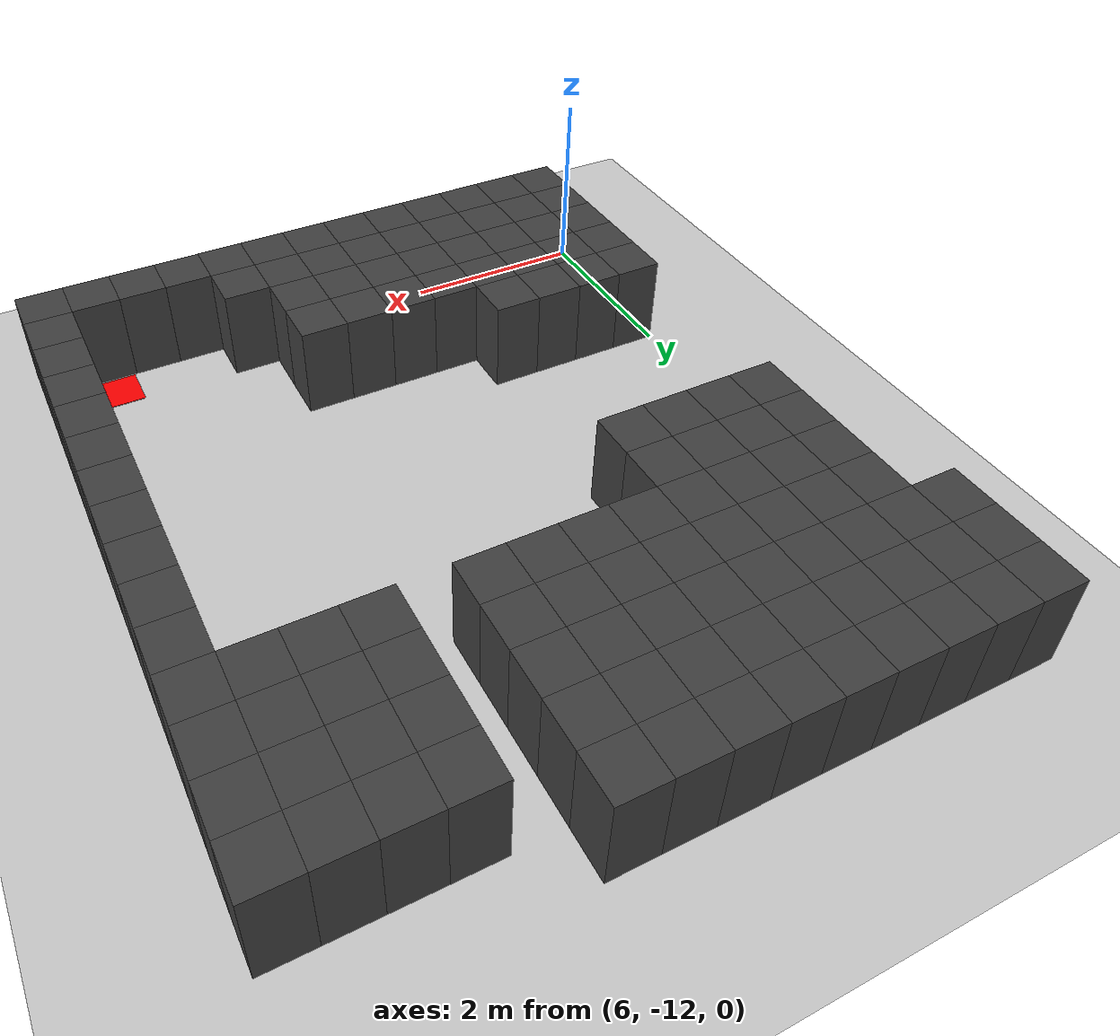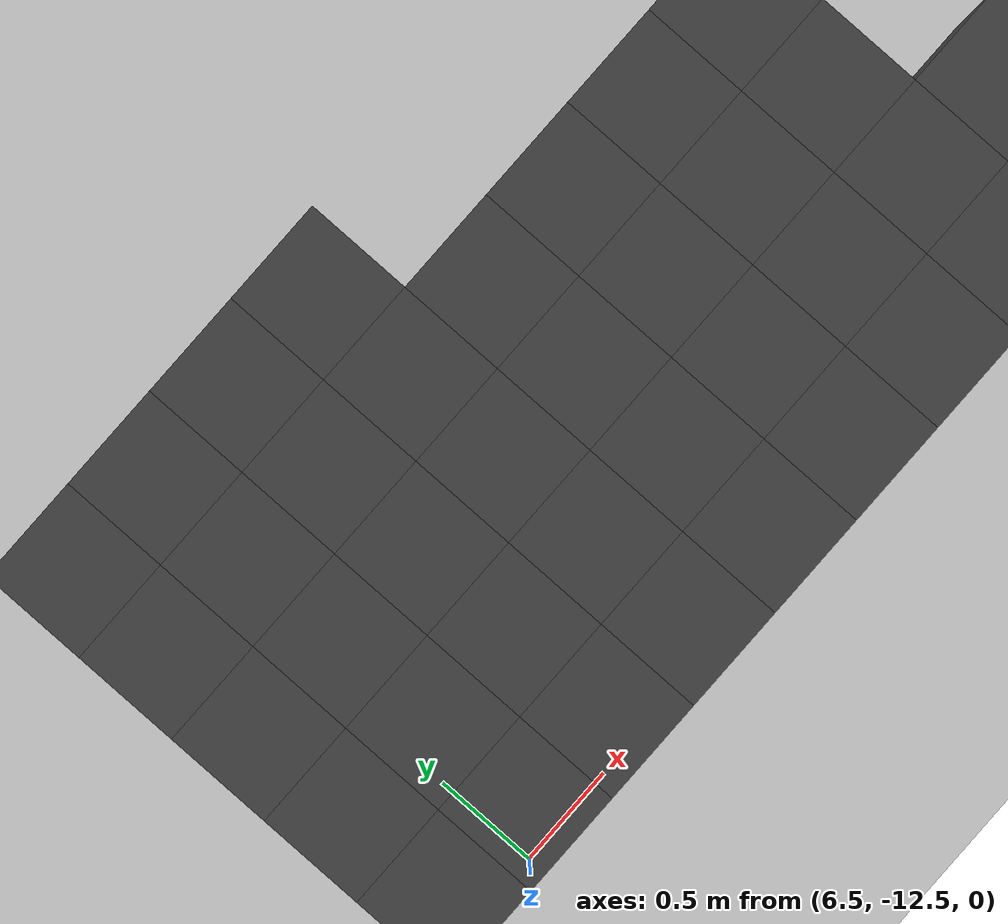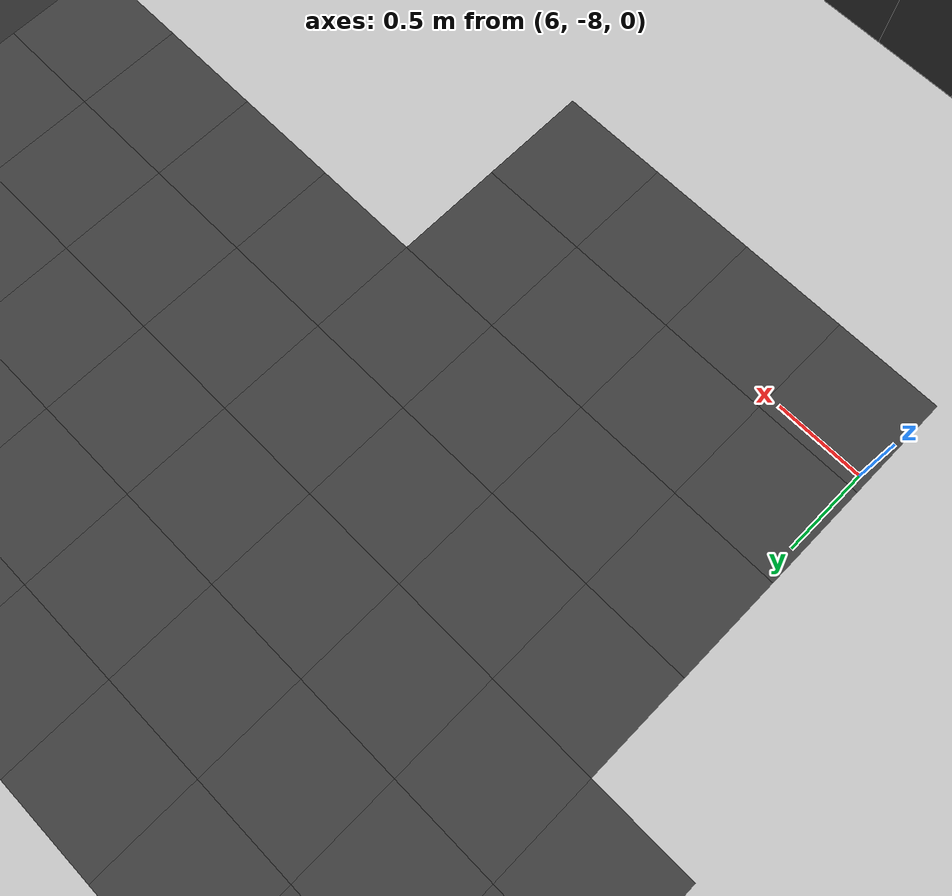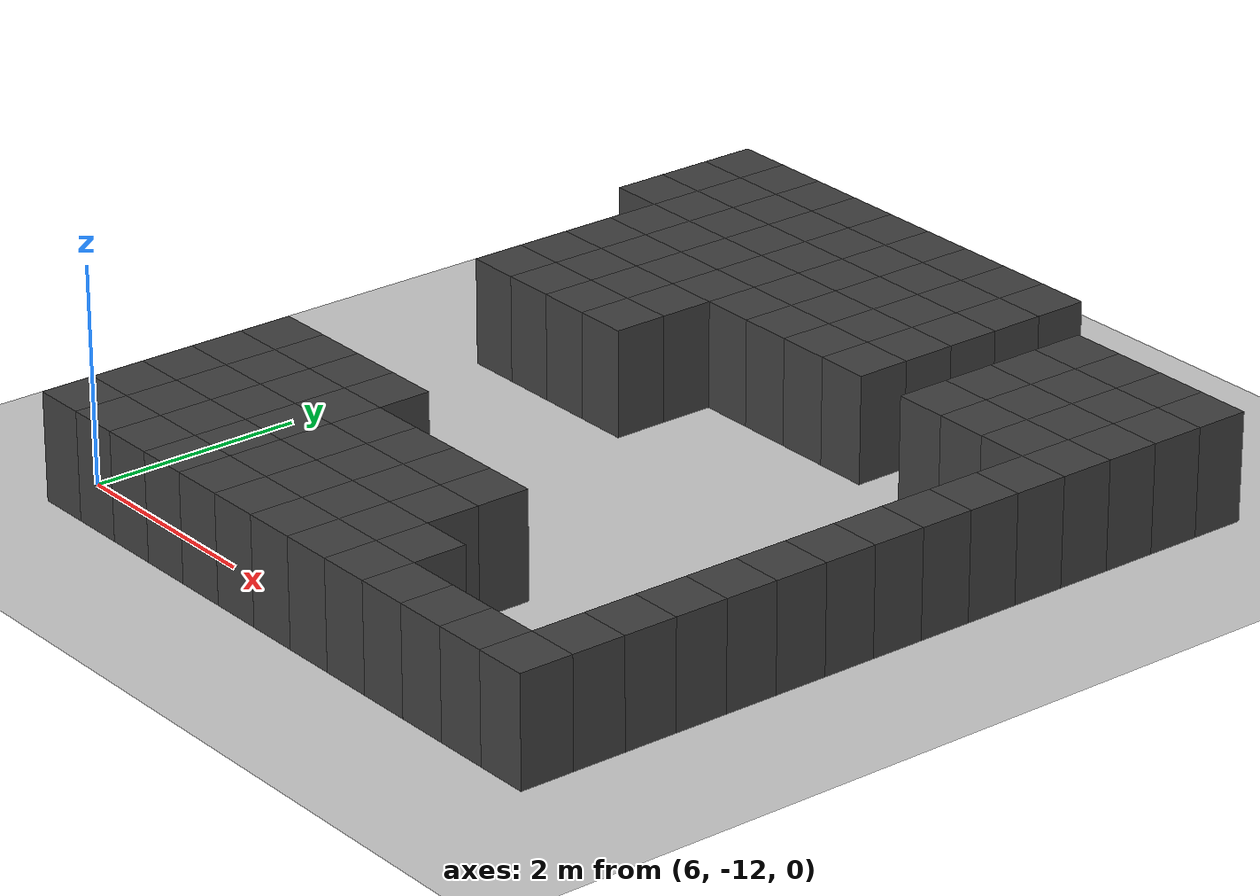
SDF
<sdf version="1.7">
 <world name="map_12885">
  <model name="ground_plane">
   <static>true</static>
   <link name="link">
    <collision name="collision">
     <geometry><plane><normal>0 0 1</normal><size>200 200</size></plane></geometry>
    </collision>
    <visual name="visual">
     <geometry><plane><normal>0 0 1</normal><size>200 200</size></plane></geometry>
     <material><ambient>0.8 0.8 0.8 1</ambient><diffuse>0.8 0.8 0.8 1</diffuse></material>
    </visual>
   </link>
  </model>
  <model name="maze_environment">
   <static>true</static>
   <link name="wall_1413">
    <pose>5.750 -4.750 0.500 0 0 0</pose>
    <collision name="col"><geometry><box><size>0.5 0.5 1.0</size></box></geometry></collision>
    <visual name="vis">
     <geometry><box><size>0.5 0.5 1.0</size></box></geometry>
     <material><ambient>0.15 0.15 0.15 1</ambient><diffuse>0.25 0.25 0.25 1</diffuse></material>
    </visual>
   </link>
   <link name="wall_1414">
    <pose>6.250 -4.750 0.500 0 0 0</pose>
    <collision name="col"><geometry><box><size>0.5 0.5 1.0</size></box></geometry></collision>
    <visual name="vis">
     <geometry><box><size>0.5 0.5 1.0</size></box></geometry>
     <material><ambient>0.15 0.15 0.15 1</ambient><diffuse>0.25 0.25 0.25 1</diffuse></material>
    </visual>
   </link>
   <link name="wall_1415">
    <pose>6.750 -4.750 0.500 0 0 0</pose>
    <collision name="col"><geometry><box><size>0.5 0.5 1.0</size></box></geometry></collision>
    <visual name="vis">
     <geometry><box><size>0.5 0.5 1.0</size></box></geometry>
     <material><ambient>0.15 0.15 0.15 1</ambient><diffuse>0.25 0.25 0.25 1</diffuse></material>
    </visual>
   </link>
   <link name="wall_1416">
    <pose>7.250 -4.750 0.500 0 0 0</pose>
    <collision name="col"><geometry><box><size>0.5 0.5 1.0</size></box></geometry></collision>
    <visual name="vis">
     <geometry><box><size>0.5 0.5 1.0</size></box></geometry>
     <material><ambient>0.15 0.15 0.15 1</ambient><diffuse>0.25 0.25 0.25 1</diffuse></material>
    </visual>
   </link>
   <link name="wall_1417">
    <pose>7.750 -4.750 0.500 0 0 0</pose>
    <collision name="col"><geometry><box><size>0.5 0.5 1.0</size></box></geometry></collision>
    <visual name="vis">
     <geometry><box><size>0.5 0.5 1.0</size></box></geometry>
     <material><ambient>0.15 0.15 0.15 1</ambient><diffuse>0.25 0.25 0.25 1</diffuse></material>
    </visual>
   </link>
   <link name="wall_1418">
    <pose>8.250 -4.750 0.500 0 0 0</pose>
    <collision name="col"><geometry><box><size>0.5 0.5 1.0</size></box></geometry></collision>
    <visual name="vis">
     <geometry><box><size>0.5 0.5 1.0</size></box></geometry>
     <material><ambient>0.15 0.15 0.15 1</ambient><diffuse>0.25 0.25 0.25 1</diffuse></material>
    </visual>
   </link>
   <link name="wall_1419">
    <pose>8.750 -4.750 0.500 0 0 0</pose>
    <collision name="col"><geometry><box><size>0.5 0.5 1.0</size></box></geometry></collision>
    <visual name="vis">
     <geometry><box><size>0.5 0.5 1.0</size></box></geometry>
     <material><ambient>0.15 0.15 0.15 1</ambient><diffuse>0.25 0.25 0.25 1</diffuse></material>
    </visual>
   </link>
   <link name="wall_1420">
    <pose>9.250 -4.750 0.500 0 0 0</pose>
    <collision name="col"><geometry><box><size>0.5 0.5 1.0</size></box></geometry></collision>
    <visual name="vis">
     <geometry><box><size>0.5 0.5 1.0</size></box></geometry>
     <material><ambient>0.15 0.15 0.15 1</ambient><diffuse>0.25 0.25 0.25 1</diffuse></material>
    </visual>
   </link>
   <link name="wall_1421">
    <pose>9.750 -4.750 0.500 0 0 0</pose>
    <collision name="col"><geometry><box><size>0.5 0.5 1.0</size></box></geometry></collision>
    <visual name="vis">
     <geometry><box><size>0.5 0.5 1.0</size></box></geometry>
     <material><ambient>0.15 0.15 0.15 1</ambient><diffuse>0.25 0.25 0.25 1</diffuse></material>
    </visual>
   </link>
   <link name="wall_1441">
    <pose>5.750 -5.250 0.500 0 0 0</pose>
    <collision name="col"><geometry><box><size>0.5 0.5 1.0</size></box></geometry></collision>
    <visual name="vis">
     <geometry><box><size>0.5 0.5 1.0</size></box></geometry>
     <material><ambient>0.15 0.15 0.15 1</ambient><diffuse>0.25 0.25 0.25 1</diffuse></material>
    </visual>
   </link>
   <link name="wall_1442">
    <pose>6.250 -5.250 0.500 0 0 0</pose>
    <collision name="col"><geometry><box><size>0.5 0.5 1.0</size></box></geometry></collision>
    <visual name="vis">
     <geometry><box><size>0.5 0.5 1.0</size></box></geometry>
     <material><ambient>0.15 0.15 0.15 1</ambient><diffuse>0.25 0.25 0.25 1</diffuse></material>
    </visual>
   </link>
   <link name="wall_1443">
    <pose>6.750 -5.250 0.500 0 0 0</pose>
    <collision name="col"><geometry><box><size>0.5 0.5 1.0</size></box></geometry></collision>
    <visual name="vis">
     <geometry><box><size>0.5 0.5 1.0</size></box></geometry>
     <material><ambient>0.15 0.15 0.15 1</ambient><diffuse>0.25 0.25 0.25 1</diffuse></material>
    </visual>
   </link>
   <link name="wall_1444">
    <pose>7.250 -5.250 0.500 0 0 0</pose>
    <collision name="col"><geometry><box><size>0.5 0.5 1.0</size></box></geometry></collision>
    <visual name="vis">
     <geometry><box><size>0.5 0.5 1.0</size></box></geometry>
     <material><ambient>0.15 0.15 0.15 1</ambient><diffuse>0.25 0.25 0.25 1</diffuse></material>
    </visual>
   </link>
   <link name="wall_1445">
    <pose>7.750 -5.250 0.500 0 0 0</pose>
    <collision name="col"><geometry><box><size>0.5 0.5 1.0</size></box></geometry></collision>
    <visual name="vis">
     <geometry><box><size>0.5 0.5 1.0</size></box></geometry>
     <material><ambient>0.15 0.15 0.15 1</ambient><diffuse>0.25 0.25 0.25 1</diffuse></material>
    </visual>
   </link>
   <link name="wall_1446">
    <pose>8.250 -5.250 0.500 0 0 0</pose>
    <collision name="col"><geometry><box><size>0.5 0.5 1.0</size></box></geometry></collision>
    <visual name="vis">
     <geometry><box><size>0.5 0.5 1.0</size></box></geometry>
     <material><ambient>0.15 0.15 0.15 1</ambient><diffuse>0.25 0.25 0.25 1</diffuse></material>
    </visual>
   </link>
   <link name="wall_1447">
    <pose>8.750 -5.250 0.500 0 0 0</pose>
    <collision name="col"><geometry><box><size>0.5 0.5 1.0</size></box></geometry></collision>
    <visual name="vis">
     <geometry><box><size>0.5 0.5 1.0</size></box></geometry>
     <material><ambient>0.15 0.15 0.15 1</ambient><diffuse>0.25 0.25 0.25 1</diffuse></material>
    </visual>
   </link>
   <link name="wall_1448">
    <pose>9.250 -5.250 0.500 0 0 0</pose>
    <collision name="col"><geometry><box><size>0.5 0.5 1.0</size></box></geometry></collision>
    <visual name="vis">
     <geometry><box><size>0.5 0.5 1.0</size></box></geometry>
     <material><ambient>0.15 0.15 0.15 1</ambient><diffuse>0.25 0.25 0.25 1</diffuse></material>
    </visual>
   </link>
   <link name="wall_1449">
    <pose>9.750 -5.250 0.500 0 0 0</pose>
    <collision name="col"><geometry><box><size>0.5 0.5 1.0</size></box></geometry></collision>
    <visual name="vis">
     <geometry><box><size>0.5 0.5 1.0</size></box></geometry>
     <material><ambient>0.15 0.15 0.15 1</ambient><diffuse>0.25 0.25 0.25 1</diffuse></material>
    </visual>
   </link>
   <link name="wall_1450">
    <pose>10.750 -5.250 0.500 0 0 0</pose>
    <collision name="col"><geometry><box><size>0.5 0.5 1.0</size></box></geometry></collision>
    <visual name="vis">
     <geometry><box><size>0.5 0.5 1.0</size></box></geometry>
     <material><ambient>0.15 0.15 0.15 1</ambient><diffuse>0.25 0.25 0.25 1</diffuse></material>
    </visual>
   </link>
   <link name="wall_1451">
    <pose>11.250 -5.250 0.500 0 0 0</pose>
    <collision name="col"><geometry><box><size>0.5 0.5 1.0</size></box></geometry></collision>
    <visual name="vis">
     <geometry><box><size>0.5 0.5 1.0</size></box></geometry>
     <material><ambient>0.15 0.15 0.15 1</ambient><diffuse>0.25 0.25 0.25 1</diffuse></material>
    </visual>
   </link>
   <link name="wall_1452">
    <pose>11.750 -5.250 0.500 0 0 0</pose>
    <collision name="col"><geometry><box><size>0.5 0.5 1.0</size></box></geometry></collision>
    <visual name="vis">
     <geometry><box><size>0.5 0.5 1.0</size></box></geometry>
     <material><ambient>0.15 0.15 0.15 1</ambient><diffuse>0.25 0.25 0.25 1</diffuse></material>
    </visual>
   </link>
   <link name="wall_1453">
    <pose>12.250 -5.250 0.500 0 0 0</pose>
    <collision name="col"><geometry><box><size>0.5 0.5 1.0</size></box></geometry></collision>
    <visual name="vis">
     <geometry><box><size>0.5 0.5 1.0</size></box></geometry>
     <material><ambient>0.15 0.15 0.15 1</ambient><diffuse>0.25 0.25 0.25 1</diffuse></material>
    </visual>
   </link>
   <link name="wall_1468">
    <pose>5.750 -5.750 0.500 0 0 0</pose>
    <collision name="col"><geometry><box><size>0.5 0.5 1.0</size></box></geometry></collision>
    <visual name="vis">
     <geometry><box><size>0.5 0.5 1.0</size></box></geometry>
     <material><ambient>0.15 0.15 0.15 1</ambient><diffuse>0.25 0.25 0.25 1</diffuse></material>
    </visual>
   </link>
   <link name="wall_1469">
    <pose>6.250 -5.750 0.500 0 0 0</pose>
    <collision name="col"><geometry><box><size>0.5 0.5 1.0</size></box></geometry></collision>
    <visual name="vis">
     <geometry><box><size>0.5 0.5 1.0</size></box></geometry>
     <material><ambient>0.15 0.15 0.15 1</ambient><diffuse>0.25 0.25 0.25 1</diffuse></material>
    </visual>
   </link>
   <link name="wall_1470">
    <pose>6.750 -5.750 0.500 0 0 0</pose>
    <collision name="col"><geometry><box><size>0.5 0.5 1.0</size></box></geometry></collision>
    <visual name="vis">
     <geometry><box><size>0.5 0.5 1.0</size></box></geometry>
     <material><ambient>0.15 0.15 0.15 1</ambient><diffuse>0.25 0.25 0.25 1</diffuse></material>
    </visual>
   </link>
   <link name="wall_1471">
    <pose>7.250 -5.750 0.500 0 0 0</pose>
    <collision name="col"><geometry><box><size>0.5 0.5 1.0</size></box></geometry></collision>
    <visual name="vis">
     <geometry><box><size>0.5 0.5 1.0</size></box></geometry>
     <material><ambient>0.15 0.15 0.15 1</ambient><diffuse>0.25 0.25 0.25 1</diffuse></material>
    </visual>
   </link>
   <link name="wall_1472">
    <pose>7.750 -5.750 0.500 0 0 0</pose>
    <collision name="col"><geometry><box><size>0.5 0.5 1.0</size></box></geometry></collision>
    <visual name="vis">
     <geometry><box><size>0.5 0.5 1.0</size></box></geometry>
     <material><ambient>0.15 0.15 0.15 1</ambient><diffuse>0.25 0.25 0.25 1</diffuse></material>
    </visual>
   </link>
   <link name="wall_1473">
    <pose>8.250 -5.750 0.500 0 0 0</pose>
    <collision name="col"><geometry><box><size>0.5 0.5 1.0</size></box></geometry></collision>
    <visual name="vis">
     <geometry><box><size>0.5 0.5 1.0</size></box></geometry>
     <material><ambient>0.15 0.15 0.15 1</ambient><diffuse>0.25 0.25 0.25 1</diffuse></material>
    </visual>
   </link>
   <link name="wall_1474">
    <pose>8.750 -5.750 0.500 0 0 0</pose>
    <collision name="col"><geometry><box><size>0.5 0.5 1.0</size></box></geometry></collision>
    <visual name="vis">
     <geometry><box><size>0.5 0.5 1.0</size></box></geometry>
     <material><ambient>0.15 0.15 0.15 1</ambient><diffuse>0.25 0.25 0.25 1</diffuse></material>
    </visual>
   </link>
   <link name="wall_1475">
    <pose>9.250 -5.750 0.500 0 0 0</pose>
    <collision name="col"><geometry><box><size>0.5 0.5 1.0</size></box></geometry></collision>
    <visual name="vis">
     <geometry><box><size>0.5 0.5 1.0</size></box></geometry>
     <material><ambient>0.15 0.15 0.15 1</ambient><diffuse>0.25 0.25 0.25 1</diffuse></material>
    </visual>
   </link>
   <link name="wall_1476">
    <pose>9.750 -5.750 0.500 0 0 0</pose>
    <collision name="col"><geometry><box><size>0.5 0.5 1.0</size></box></geometry></collision>
    <visual name="vis">
     <geometry><box><size>0.5 0.5 1.0</size></box></geometry>
     <material><ambient>0.15 0.15 0.15 1</ambient><diffuse>0.25 0.25 0.25 1</diffuse></material>
    </visual>
   </link>
   <link name="wall_1477">
    <pose>10.750 -5.750 0.500 0 0 0</pose>
    <collision name="col"><geometry><box><size>0.5 0.5 1.0</size></box></geometry></collision>
    <visual name="vis">
     <geometry><box><size>0.5 0.5 1.0</size></box></geometry>
     <material><ambient>0.15 0.15 0.15 1</ambient><diffuse>0.25 0.25 0.25 1</diffuse></material>
    </visual>
   </link>
   <link name="wall_1478">
    <pose>11.250 -5.750 0.500 0 0 0</pose>
    <collision name="col"><geometry><box><size>0.5 0.5 1.0</size></box></geometry></collision>
    <visual name="vis">
     <geometry><box><size>0.5 0.5 1.0</size></box></geometry>
     <material><ambient>0.15 0.15 0.15 1</ambient><diffuse>0.25 0.25 0.25 1</diffuse></material>
    </visual>
   </link>
   <link name="wall_1479">
    <pose>11.750 -5.750 0.500 0 0 0</pose>
    <collision name="col"><geometry><box><size>0.5 0.5 1.0</size></box></geometry></collision>
    <visual name="vis">
     <geometry><box><size>0.5 0.5 1.0</size></box></geometry>
     <material><ambient>0.15 0.15 0.15 1</ambient><diffuse>0.25 0.25 0.25 1</diffuse></material>
    </visual>
   </link>
   <link name="wall_1480">
    <pose>12.250 -5.750 0.500 0 0 0</pose>
    <collision name="col"><geometry><box><size>0.5 0.5 1.0</size></box></geometry></collision>
    <visual name="vis">
     <geometry><box><size>0.5 0.5 1.0</size></box></geometry>
     <material><ambient>0.15 0.15 0.15 1</ambient><diffuse>0.25 0.25 0.25 1</diffuse></material>
    </visual>
   </link>
   <link name="wall_1502">
    <pose>6.250 -6.250 0.500 0 0 0</pose>
    <collision name="col"><geometry><box><size>0.5 0.5 1.0</size></box></geometry></collision>
    <visual name="vis">
     <geometry><box><size>0.5 0.5 1.0</size></box></geometry>
     <material><ambient>0.15 0.15 0.15 1</ambient><diffuse>0.25 0.25 0.25 1</diffuse></material>
    </visual>
   </link>
   <link name="wall_1503">
    <pose>6.750 -6.250 0.500 0 0 0</pose>
    <collision name="col"><geometry><box><size>0.5 0.5 1.0</size></box></geometry></collision>
    <visual name="vis">
     <geometry><box><size>0.5 0.5 1.0</size></box></geometry>
     <material><ambient>0.15 0.15 0.15 1</ambient><diffuse>0.25 0.25 0.25 1</diffuse></material>
    </visual>
   </link>
   <link name="wall_1504">
    <pose>7.250 -6.250 0.500 0 0 0</pose>
    <collision name="col"><geometry><box><size>0.5 0.5 1.0</size></box></geometry></collision>
    <visual name="vis">
     <geometry><box><size>0.5 0.5 1.0</size></box></geometry>
     <material><ambient>0.15 0.15 0.15 1</ambient><diffuse>0.25 0.25 0.25 1</diffuse></material>
    </visual>
   </link>
   <link name="wall_1505">
    <pose>7.750 -6.250 0.500 0 0 0</pose>
    <collision name="col"><geometry><box><size>0.5 0.5 1.0</size></box></geometry></collision>
    <visual name="vis">
     <geometry><box><size>0.5 0.5 1.0</size></box></geometry>
     <material><ambient>0.15 0.15 0.15 1</ambient><diffuse>0.25 0.25 0.25 1</diffuse></material>
    </visual>
   </link>
   <link name="wall_1506">
    <pose>8.250 -6.250 0.500 0 0 0</pose>
    <collision name="col"><geometry><box><size>0.5 0.5 1.0</size></box></geometry></collision>
    <visual name="vis">
     <geometry><box><size>0.5 0.5 1.0</size></box></geometry>
     <material><ambient>0.15 0.15 0.15 1</ambient><diffuse>0.25 0.25 0.25 1</diffuse></material>
    </visual>
   </link>
   <link name="wall_1507">
    <pose>8.750 -6.250 0.500 0 0 0</pose>
    <collision name="col"><geometry><box><size>0.5 0.5 1.0</size></box></geometry></collision>
    <visual name="vis">
     <geometry><box><size>0.5 0.5 1.0</size></box></geometry>
     <material><ambient>0.15 0.15 0.15 1</ambient><diffuse>0.25 0.25 0.25 1</diffuse></material>
    </visual>
   </link>
   <link name="wall_1508">
    <pose>9.250 -6.250 0.500 0 0 0</pose>
    <collision name="col"><geometry><box><size>0.5 0.5 1.0</size></box></geometry></collision>
    <visual name="vis">
     <geometry><box><size>0.5 0.5 1.0</size></box></geometry>
     <material><ambient>0.15 0.15 0.15 1</ambient><diffuse>0.25 0.25 0.25 1</diffuse></material>
    </visual>
   </link>
   <link name="wall_1509">
    <pose>9.750 -6.250 0.500 0 0 0</pose>
    <collision name="col"><geometry><box><size>0.5 0.5 1.0</size></box></geometry></collision>
    <visual name="vis">
     <geometry><box><size>0.5 0.5 1.0</size></box></geometry>
     <material><ambient>0.15 0.15 0.15 1</ambient><diffuse>0.25 0.25 0.25 1</diffuse></material>
    </visual>
   </link>
   <link name="wall_1510">
    <pose>10.750 -6.250 0.500 0 0 0</pose>
    <collision name="col"><geometry><box><size>0.5 0.5 1.0</size></box></geometry></collision>
    <visual name="vis">
     <geometry><box><size>0.5 0.5 1.0</size></box></geometry>
     <material><ambient>0.15 0.15 0.15 1</ambient><diffuse>0.25 0.25 0.25 1</diffuse></material>
    </visual>
   </link>
   <link name="wall_1511">
    <pose>11.250 -6.250 0.500 0 0 0</pose>
    <collision name="col"><geometry><box><size>0.5 0.5 1.0</size></box></geometry></collision>
    <visual name="vis">
     <geometry><box><size>0.5 0.5 1.0</size></box></geometry>
     <material><ambient>0.15 0.15 0.15 1</ambient><diffuse>0.25 0.25 0.25 1</diffuse></material>
    </visual>
   </link>
   <link name="wall_1512">
    <pose>11.750 -6.250 0.500 0 0 0</pose>
    <collision name="col"><geometry><box><size>0.5 0.5 1.0</size></box></geometry></collision>
    <visual name="vis">
     <geometry><box><size>0.5 0.5 1.0</size></box></geometry>
     <material><ambient>0.15 0.15 0.15 1</ambient><diffuse>0.25 0.25 0.25 1</diffuse></material>
    </visual>
   </link>
   <link name="wall_1513">
    <pose>12.250 -6.250 0.500 0 0 0</pose>
    <collision name="col"><geometry><box><size>0.5 0.5 1.0</size></box></geometry></collision>
    <visual name="vis">
     <geometry><box><size>0.5 0.5 1.0</size></box></geometry>
     <material><ambient>0.15 0.15 0.15 1</ambient><diffuse>0.25 0.25 0.25 1</diffuse></material>
    </visual>
   </link>
   <link name="wall_1533">
    <pose>6.250 -6.750 0.500 0 0 0</pose>
    <collision name="col"><geometry><box><size>0.5 0.5 1.0</size></box></geometry></collision>
    <visual name="vis">
     <geometry><box><size>0.5 0.5 1.0</size></box></geometry>
     <material><ambient>0.15 0.15 0.15 1</ambient><diffuse>0.25 0.25 0.25 1</diffuse></material>
    </visual>
   </link>
   <link name="wall_1534">
    <pose>6.750 -6.750 0.500 0 0 0</pose>
    <collision name="col"><geometry><box><size>0.5 0.5 1.0</size></box></geometry></collision>
    <visual name="vis">
     <geometry><box><size>0.5 0.5 1.0</size></box></geometry>
     <material><ambient>0.15 0.15 0.15 1</ambient><diffuse>0.25 0.25 0.25 1</diffuse></material>
    </visual>
   </link>
   <link name="wall_1535">
    <pose>7.250 -6.750 0.500 0 0 0</pose>
    <collision name="col"><geometry><box><size>0.5 0.5 1.0</size></box></geometry></collision>
    <visual name="vis">
     <geometry><box><size>0.5 0.5 1.0</size></box></geometry>
     <material><ambient>0.15 0.15 0.15 1</ambient><diffuse>0.25 0.25 0.25 1</diffuse></material>
    </visual>
   </link>
   <link name="wall_1536">
    <pose>7.750 -6.750 0.500 0 0 0</pose>
    <collision name="col"><geometry><box><size>0.5 0.5 1.0</size></box></geometry></collision>
    <visual name="vis">
     <geometry><box><size>0.5 0.5 1.0</size></box></geometry>
     <material><ambient>0.15 0.15 0.15 1</ambient><diffuse>0.25 0.25 0.25 1</diffuse></material>
    </visual>
   </link>
   <link name="wall_1537">
    <pose>8.250 -6.750 0.500 0 0 0</pose>
    <collision name="col"><geometry><box><size>0.5 0.5 1.0</size></box></geometry></collision>
    <visual name="vis">
     <geometry><box><size>0.5 0.5 1.0</size></box></geometry>
     <material><ambient>0.15 0.15 0.15 1</ambient><diffuse>0.25 0.25 0.25 1</diffuse></material>
    </visual>
   </link>
   <link name="wall_1538">
    <pose>8.750 -6.750 0.500 0 0 0</pose>
    <collision name="col"><geometry><box><size>0.5 0.5 1.0</size></box></geometry></collision>
    <visual name="vis">
     <geometry><box><size>0.5 0.5 1.0</size></box></geometry>
     <material><ambient>0.15 0.15 0.15 1</ambient><diffuse>0.25 0.25 0.25 1</diffuse></material>
    </visual>
   </link>
   <link name="wall_1539">
    <pose>9.250 -6.750 0.500 0 0 0</pose>
    <collision name="col"><geometry><box><size>0.5 0.5 1.0</size></box></geometry></collision>
    <visual name="vis">
     <geometry><box><size>0.5 0.5 1.0</size></box></geometry>
     <material><ambient>0.15 0.15 0.15 1</ambient><diffuse>0.25 0.25 0.25 1</diffuse></material>
    </visual>
   </link>
   <link name="wall_1540">
    <pose>9.750 -6.750 0.500 0 0 0</pose>
    <collision name="col"><geometry><box><size>0.5 0.5 1.0</size></box></geometry></collision>
    <visual name="vis">
     <geometry><box><size>0.5 0.5 1.0</size></box></geometry>
     <material><ambient>0.15 0.15 0.15 1</ambient><diffuse>0.25 0.25 0.25 1</diffuse></material>
    </visual>
   </link>
   <link name="wall_1541">
    <pose>10.750 -6.750 0.500 0 0 0</pose>
    <collision name="col"><geometry><box><size>0.5 0.5 1.0</size></box></geometry></collision>
    <visual name="vis">
     <geometry><box><size>0.5 0.5 1.0</size></box></geometry>
     <material><ambient>0.15 0.15 0.15 1</ambient><diffuse>0.25 0.25 0.25 1</diffuse></material>
    </visual>
   </link>
   <link name="wall_1542">
    <pose>11.250 -6.750 0.500 0 0 0</pose>
    <collision name="col"><geometry><box><size>0.5 0.5 1.0</size></box></geometry></collision>
    <visual name="vis">
     <geometry><box><size>0.5 0.5 1.0</size></box></geometry>
     <material><ambient>0.15 0.15 0.15 1</ambient><diffuse>0.25 0.25 0.25 1</diffuse></material>
    </visual>
   </link>
   <link name="wall_1543">
    <pose>11.750 -6.750 0.500 0 0 0</pose>
    <collision name="col"><geometry><box><size>0.5 0.5 1.0</size></box></geometry></collision>
    <visual name="vis">
     <geometry><box><size>0.5 0.5 1.0</size></box></geometry>
     <material><ambient>0.15 0.15 0.15 1</ambient><diffuse>0.25 0.25 0.25 1</diffuse></material>
    </visual>
   </link>
   <link name="wall_1544">
    <pose>12.250 -6.750 0.500 0 0 0</pose>
    <collision name="col"><geometry><box><size>0.5 0.5 1.0</size></box></geometry></collision>
    <visual name="vis">
     <geometry><box><size>0.5 0.5 1.0</size></box></geometry>
     <material><ambient>0.15 0.15 0.15 1</ambient><diffuse>0.25 0.25 0.25 1</diffuse></material>
    </visual>
   </link>
   <link name="wall_1574">
    <pose>6.250 -7.250 0.500 0 0 0</pose>
    <collision name="col"><geometry><box><size>0.5 0.5 1.0</size></box></geometry></collision>
    <visual name="vis">
     <geometry><box><size>0.5 0.5 1.0</size></box></geometry>
     <material><ambient>0.15 0.15 0.15 1</ambient><diffuse>0.25 0.25 0.25 1</diffuse></material>
    </visual>
   </link>
   <link name="wall_1575">
    <pose>6.750 -7.250 0.500 0 0 0</pose>
    <collision name="col"><geometry><box><size>0.5 0.5 1.0</size></box></geometry></collision>
    <visual name="vis">
     <geometry><box><size>0.5 0.5 1.0</size></box></geometry>
     <material><ambient>0.15 0.15 0.15 1</ambient><diffuse>0.25 0.25 0.25 1</diffuse></material>
    </visual>
   </link>
   <link name="wall_1576">
    <pose>7.250 -7.250 0.500 0 0 0</pose>
    <collision name="col"><geometry><box><size>0.5 0.5 1.0</size></box></geometry></collision>
    <visual name="vis">
     <geometry><box><size>0.5 0.5 1.0</size></box></geometry>
     <material><ambient>0.15 0.15 0.15 1</ambient><diffuse>0.25 0.25 0.25 1</diffuse></material>
    </visual>
   </link>
   <link name="wall_1577">
    <pose>7.750 -7.250 0.500 0 0 0</pose>
    <collision name="col"><geometry><box><size>0.5 0.5 1.0</size></box></geometry></collision>
    <visual name="vis">
     <geometry><box><size>0.5 0.5 1.0</size></box></geometry>
     <material><ambient>0.15 0.15 0.15 1</ambient><diffuse>0.25 0.25 0.25 1</diffuse></material>
    </visual>
   </link>
   <link name="wall_1578">
    <pose>12.250 -7.250 0.500 0 0 0</pose>
    <collision name="col"><geometry><box><size>0.5 0.5 1.0</size></box></geometry></collision>
    <visual name="vis">
     <geometry><box><size>0.5 0.5 1.0</size></box></geometry>
     <material><ambient>0.15 0.15 0.15 1</ambient><diffuse>0.25 0.25 0.25 1</diffuse></material>
    </visual>
   </link>
   <link name="wall_1604">
    <pose>6.250 -7.750 0.500 0 0 0</pose>
    <collision name="col"><geometry><box><size>0.5 0.5 1.0</size></box></geometry></collision>
    <visual name="vis">
     <geometry><box><size>0.5 0.5 1.0</size></box></geometry>
     <material><ambient>0.15 0.15 0.15 1</ambient><diffuse>0.25 0.25 0.25 1</diffuse></material>
    </visual>
   </link>
   <link name="wall_1605">
    <pose>6.750 -7.750 0.500 0 0 0</pose>
    <collision name="col"><geometry><box><size>0.5 0.5 1.0</size></box></geometry></collision>
    <visual name="vis">
     <geometry><box><size>0.5 0.5 1.0</size></box></geometry>
     <material><ambient>0.15 0.15 0.15 1</ambient><diffuse>0.25 0.25 0.25 1</diffuse></material>
    </visual>
   </link>
   <link name="wall_1606">
    <pose>7.250 -7.750 0.500 0 0 0</pose>
    <collision name="col"><geometry><box><size>0.5 0.5 1.0</size></box></geometry></collision>
    <visual name="vis">
     <geometry><box><size>0.5 0.5 1.0</size></box></geometry>
     <material><ambient>0.15 0.15 0.15 1</ambient><diffuse>0.25 0.25 0.25 1</diffuse></material>
    </visual>
   </link>
   <link name="wall_1607">
    <pose>7.750 -7.750 0.500 0 0 0</pose>
    <collision name="col"><geometry><box><size>0.5 0.5 1.0</size></box></geometry></collision>
    <visual name="vis">
     <geometry><box><size>0.5 0.5 1.0</size></box></geometry>
     <material><ambient>0.15 0.15 0.15 1</ambient><diffuse>0.25 0.25 0.25 1</diffuse></material>
    </visual>
   </link>
   <link name="wall_1608">
    <pose>12.250 -7.750 0.500 0 0 0</pose>
    <collision name="col"><geometry><box><size>0.5 0.5 1.0</size></box></geometry></collision>
    <visual name="vis">
     <geometry><box><size>0.5 0.5 1.0</size></box></geometry>
     <material><ambient>0.15 0.15 0.15 1</ambient><diffuse>0.25 0.25 0.25 1</diffuse></material>
    </visual>
   </link>
   <link name="wall_1629">
    <pose>12.250 -8.250 0.500 0 0 0</pose>
    <collision name="col"><geometry><box><size>0.5 0.5 1.0</size></box></geometry></collision>
    <visual name="vis">
     <geometry><box><size>0.5 0.5 1.0</size></box></geometry>
     <material><ambient>0.15 0.15 0.15 1</ambient><diffuse>0.25 0.25 0.25 1</diffuse></material>
    </visual>
   </link>
   <link name="wall_1657">
    <pose>12.250 -8.750 0.500 0 0 0</pose>
    <collision name="col"><geometry><box><size>0.5 0.5 1.0</size></box></geometry></collision>
    <visual name="vis">
     <geometry><box><size>0.5 0.5 1.0</size></box></geometry>
     <material><ambient>0.15 0.15 0.15 1</ambient><diffuse>0.25 0.25 0.25 1</diffuse></material>
    </visual>
   </link>
   <link name="wall_1682">
    <pose>12.250 -9.250 0.500 0 0 0</pose>
    <collision name="col"><geometry><box><size>0.5 0.5 1.0</size></box></geometry></collision>
    <visual name="vis">
     <geometry><box><size>0.5 0.5 1.0</size></box></geometry>
     <material><ambient>0.15 0.15 0.15 1</ambient><diffuse>0.25 0.25 0.25 1</diffuse></material>
    </visual>
   </link>
   <link name="wall_1710">
    <pose>12.250 -9.750 0.500 0 0 0</pose>
    <collision name="col"><geometry><box><size>0.5 0.5 1.0</size></box></geometry></collision>
    <visual name="vis">
     <geometry><box><size>0.5 0.5 1.0</size></box></geometry>
     <material><ambient>0.15 0.15 0.15 1</ambient><diffuse>0.25 0.25 0.25 1</diffuse></material>
    </visual>
   </link>
   <link name="wall_1743">
    <pose>6.250 -10.250 0.500 0 0 0</pose>
    <collision name="col"><geometry><box><size>0.5 0.5 1.0</size></box></geometry></collision>
    <visual name="vis">
     <geometry><box><size>0.5 0.5 1.0</size></box></geometry>
     <material><ambient>0.15 0.15 0.15 1</ambient><diffuse>0.25 0.25 0.25 1</diffuse></material>
    </visual>
   </link>
   <link name="wall_1744">
    <pose>6.750 -10.250 0.500 0 0 0</pose>
    <collision name="col"><geometry><box><size>0.5 0.5 1.0</size></box></geometry></collision>
    <visual name="vis">
     <geometry><box><size>0.5 0.5 1.0</size></box></geometry>
     <material><ambient>0.15 0.15 0.15 1</ambient><diffuse>0.25 0.25 0.25 1</diffuse></material>
    </visual>
   </link>
   <link name="wall_1745">
    <pose>7.250 -10.250 0.500 0 0 0</pose>
    <collision name="col"><geometry><box><size>0.5 0.5 1.0</size></box></geometry></collision>
    <visual name="vis">
     <geometry><box><size>0.5 0.5 1.0</size></box></geometry>
     <material><ambient>0.15 0.15 0.15 1</ambient><diffuse>0.25 0.25 0.25 1</diffuse></material>
    </visual>
   </link>
   <link name="wall_1746">
    <pose>7.750 -10.250 0.500 0 0 0</pose>
    <collision name="col"><geometry><box><size>0.5 0.5 1.0</size></box></geometry></collision>
    <visual name="vis">
     <geometry><box><size>0.5 0.5 1.0</size></box></geometry>
     <material><ambient>0.15 0.15 0.15 1</ambient><diffuse>0.25 0.25 0.25 1</diffuse></material>
    </visual>
   </link>
   <link name="wall_1747">
    <pose>12.250 -10.250 0.500 0 0 0</pose>
    <collision name="col"><geometry><box><size>0.5 0.5 1.0</size></box></geometry></collision>
    <visual name="vis">
     <geometry><box><size>0.5 0.5 1.0</size></box></geometry>
     <material><ambient>0.15 0.15 0.15 1</ambient><diffuse>0.25 0.25 0.25 1</diffuse></material>
    </visual>
   </link>
   <link name="wall_1780">
    <pose>6.250 -10.750 0.500 0 0 0</pose>
    <collision name="col"><geometry><box><size>0.5 0.5 1.0</size></box></geometry></collision>
    <visual name="vis">
     <geometry><box><size>0.5 0.5 1.0</size></box></geometry>
     <material><ambient>0.15 0.15 0.15 1</ambient><diffuse>0.25 0.25 0.25 1</diffuse></material>
    </visual>
   </link>
   <link name="wall_1781">
    <pose>6.750 -10.750 0.500 0 0 0</pose>
    <collision name="col"><geometry><box><size>0.5 0.5 1.0</size></box></geometry></collision>
    <visual name="vis">
     <geometry><box><size>0.5 0.5 1.0</size></box></geometry>
     <material><ambient>0.15 0.15 0.15 1</ambient><diffuse>0.25 0.25 0.25 1</diffuse></material>
    </visual>
   </link>
   <link name="wall_1782">
    <pose>7.250 -10.750 0.500 0 0 0</pose>
    <collision name="col"><geometry><box><size>0.5 0.5 1.0</size></box></geometry></collision>
    <visual name="vis">
     <geometry><box><size>0.5 0.5 1.0</size></box></geometry>
     <material><ambient>0.15 0.15 0.15 1</ambient><diffuse>0.25 0.25 0.25 1</diffuse></material>
    </visual>
   </link>
   <link name="wall_1783">
    <pose>7.750 -10.750 0.500 0 0 0</pose>
    <collision name="col"><geometry><box><size>0.5 0.5 1.0</size></box></geometry></collision>
    <visual name="vis">
     <geometry><box><size>0.5 0.5 1.0</size></box></geometry>
     <material><ambient>0.15 0.15 0.15 1</ambient><diffuse>0.25 0.25 0.25 1</diffuse></material>
    </visual>
   </link>
   <link name="wall_1784">
    <pose>8.250 -10.750 0.500 0 0 0</pose>
    <collision name="col"><geometry><box><size>0.5 0.5 1.0</size></box></geometry></collision>
    <visual name="vis">
     <geometry><box><size>0.5 0.5 1.0</size></box></geometry>
     <material><ambient>0.15 0.15 0.15 1</ambient><diffuse>0.25 0.25 0.25 1</diffuse></material>
    </visual>
   </link>
   <link name="wall_1785">
    <pose>8.750 -10.750 0.500 0 0 0</pose>
    <collision name="col"><geometry><box><size>0.5 0.5 1.0</size></box></geometry></collision>
    <visual name="vis">
     <geometry><box><size>0.5 0.5 1.0</size></box></geometry>
     <material><ambient>0.15 0.15 0.15 1</ambient><diffuse>0.25 0.25 0.25 1</diffuse></material>
    </visual>
   </link>
   <link name="wall_1786">
    <pose>9.250 -10.750 0.500 0 0 0</pose>
    <collision name="col"><geometry><box><size>0.5 0.5 1.0</size></box></geometry></collision>
    <visual name="vis">
     <geometry><box><size>0.5 0.5 1.0</size></box></geometry>
     <material><ambient>0.15 0.15 0.15 1</ambient><diffuse>0.25 0.25 0.25 1</diffuse></material>
    </visual>
   </link>
   <link name="wall_1787">
    <pose>9.750 -10.750 0.500 0 0 0</pose>
    <collision name="col"><geometry><box><size>0.5 0.5 1.0</size></box></geometry></collision>
    <visual name="vis">
     <geometry><box><size>0.5 0.5 1.0</size></box></geometry>
     <material><ambient>0.15 0.15 0.15 1</ambient><diffuse>0.25 0.25 0.25 1</diffuse></material>
    </visual>
   </link>
   <link name="wall_1788">
    <pose>12.250 -10.750 0.500 0 0 0</pose>
    <collision name="col"><geometry><box><size>0.5 0.5 1.0</size></box></geometry></collision>
    <visual name="vis">
     <geometry><box><size>0.5 0.5 1.0</size></box></geometry>
     <material><ambient>0.15 0.15 0.15 1</ambient><diffuse>0.25 0.25 0.25 1</diffuse></material>
    </visual>
   </link>
   <link name="wall_1826">
    <pose>6.250 -11.250 0.500 0 0 0</pose>
    <collision name="col"><geometry><box><size>0.5 0.5 1.0</size></box></geometry></collision>
    <visual name="vis">
     <geometry><box><size>0.5 0.5 1.0</size></box></geometry>
     <material><ambient>0.15 0.15 0.15 1</ambient><diffuse>0.25 0.25 0.25 1</diffuse></material>
    </visual>
   </link>
   <link name="wall_1827">
    <pose>6.750 -11.250 0.500 0 0 0</pose>
    <collision name="col"><geometry><box><size>0.5 0.5 1.0</size></box></geometry></collision>
    <visual name="vis">
     <geometry><box><size>0.5 0.5 1.0</size></box></geometry>
     <material><ambient>0.15 0.15 0.15 1</ambient><diffuse>0.25 0.25 0.25 1</diffuse></material>
    </visual>
   </link>
   <link name="wall_1828">
    <pose>7.250 -11.250 0.500 0 0 0</pose>
    <collision name="col"><geometry><box><size>0.5 0.5 1.0</size></box></geometry></collision>
    <visual name="vis">
     <geometry><box><size>0.5 0.5 1.0</size></box></geometry>
     <material><ambient>0.15 0.15 0.15 1</ambient><diffuse>0.25 0.25 0.25 1</diffuse></material>
    </visual>
   </link>
   <link name="wall_1829">
    <pose>7.750 -11.250 0.500 0 0 0</pose>
    <collision name="col"><geometry><box><size>0.5 0.5 1.0</size></box></geometry></collision>
    <visual name="vis">
     <geometry><box><size>0.5 0.5 1.0</size></box></geometry>
     <material><ambient>0.15 0.15 0.15 1</ambient><diffuse>0.25 0.25 0.25 1</diffuse></material>
    </visual>
   </link>
   <link name="wall_1830">
    <pose>8.250 -11.250 0.500 0 0 0</pose>
    <collision name="col"><geometry><box><size>0.5 0.5 1.0</size></box></geometry></collision>
    <visual name="vis">
     <geometry><box><size>0.5 0.5 1.0</size></box></geometry>
     <material><ambient>0.15 0.15 0.15 1</ambient><diffuse>0.25 0.25 0.25 1</diffuse></material>
    </visual>
   </link>
   <link name="wall_1831">
    <pose>8.750 -11.250 0.500 0 0 0</pose>
    <collision name="col"><geometry><box><size>0.5 0.5 1.0</size></box></geometry></collision>
    <visual name="vis">
     <geometry><box><size>0.5 0.5 1.0</size></box></geometry>
     <material><ambient>0.15 0.15 0.15 1</ambient><diffuse>0.25 0.25 0.25 1</diffuse></material>
    </visual>
   </link>
   <link name="wall_1832">
    <pose>9.250 -11.250 0.500 0 0 0</pose>
    <collision name="col"><geometry><box><size>0.5 0.5 1.0</size></box></geometry></collision>
    <visual name="vis">
     <geometry><box><size>0.5 0.5 1.0</size></box></geometry>
     <material><ambient>0.15 0.15 0.15 1</ambient><diffuse>0.25 0.25 0.25 1</diffuse></material>
    </visual>
   </link>
   <link name="wall_1833">
    <pose>9.750 -11.250 0.500 0 0 0</pose>
    <collision name="col"><geometry><box><size>0.5 0.5 1.0</size></box></geometry></collision>
    <visual name="vis">
     <geometry><box><size>0.5 0.5 1.0</size></box></geometry>
     <material><ambient>0.15 0.15 0.15 1</ambient><diffuse>0.25 0.25 0.25 1</diffuse></material>
    </visual>
   </link>
   <link name="wall_1834">
    <pose>12.250 -11.250 0.500 0 0 0</pose>
    <collision name="col"><geometry><box><size>0.5 0.5 1.0</size></box></geometry></collision>
    <visual name="vis">
     <geometry><box><size>0.5 0.5 1.0</size></box></geometry>
     <material><ambient>0.15 0.15 0.15 1</ambient><diffuse>0.25 0.25 0.25 1</diffuse></material>
    </visual>
   </link>
   <link name="wall_1872">
    <pose>6.250 -11.750 0.500 0 0 0</pose>
    <collision name="col"><geometry><box><size>0.5 0.5 1.0</size></box></geometry></collision>
    <visual name="vis">
     <geometry><box><size>0.5 0.5 1.0</size></box></geometry>
     <material><ambient>0.15 0.15 0.15 1</ambient><diffuse>0.25 0.25 0.25 1</diffuse></material>
    </visual>
   </link>
   <link name="wall_1873">
    <pose>6.750 -11.750 0.500 0 0 0</pose>
    <collision name="col"><geometry><box><size>0.5 0.5 1.0</size></box></geometry></collision>
    <visual name="vis">
     <geometry><box><size>0.5 0.5 1.0</size></box></geometry>
     <material><ambient>0.15 0.15 0.15 1</ambient><diffuse>0.25 0.25 0.25 1</diffuse></material>
    </visual>
   </link>
   <link name="wall_1874">
    <pose>7.250 -11.750 0.500 0 0 0</pose>
    <collision name="col"><geometry><box><size>0.5 0.5 1.0</size></box></geometry></collision>
    <visual name="vis">
     <geometry><box><size>0.5 0.5 1.0</size></box></geometry>
     <material><ambient>0.15 0.15 0.15 1</ambient><diffuse>0.25 0.25 0.25 1</diffuse></material>
    </visual>
   </link>
   <link name="wall_1875">
    <pose>7.750 -11.750 0.500 0 0 0</pose>
    <collision name="col"><geometry><box><size>0.5 0.5 1.0</size></box></geometry></collision>
    <visual name="vis">
     <geometry><box><size>0.5 0.5 1.0</size></box></geometry>
     <material><ambient>0.15 0.15 0.15 1</ambient><diffuse>0.25 0.25 0.25 1</diffuse></material>
    </visual>
   </link>
   <link name="wall_1876">
    <pose>8.250 -11.750 0.500 0 0 0</pose>
    <collision name="col"><geometry><box><size>0.5 0.5 1.0</size></box></geometry></collision>
    <visual name="vis">
     <geometry><box><size>0.5 0.5 1.0</size></box></geometry>
     <material><ambient>0.15 0.15 0.15 1</ambient><diffuse>0.25 0.25 0.25 1</diffuse></material>
    </visual>
   </link>
   <link name="wall_1877">
    <pose>8.750 -11.750 0.500 0 0 0</pose>
    <collision name="col"><geometry><box><size>0.5 0.5 1.0</size></box></geometry></collision>
    <visual name="vis">
     <geometry><box><size>0.5 0.5 1.0</size></box></geometry>
     <material><ambient>0.15 0.15 0.15 1</ambient><diffuse>0.25 0.25 0.25 1</diffuse></material>
    </visual>
   </link>
   <link name="wall_1878">
    <pose>9.250 -11.750 0.500 0 0 0</pose>
    <collision name="col"><geometry><box><size>0.5 0.5 1.0</size></box></geometry></collision>
    <visual name="vis">
     <geometry><box><size>0.5 0.5 1.0</size></box></geometry>
     <material><ambient>0.15 0.15 0.15 1</ambient><diffuse>0.25 0.25 0.25 1</diffuse></material>
    </visual>
   </link>
   <link name="wall_1879">
    <pose>9.750 -11.750 0.500 0 0 0</pose>
    <collision name="col"><geometry><box><size>0.5 0.5 1.0</size></box></geometry></collision>
    <visual name="vis">
     <geometry><box><size>0.5 0.5 1.0</size></box></geometry>
     <material><ambient>0.15 0.15 0.15 1</ambient><diffuse>0.25 0.25 0.25 1</diffuse></material>
    </visual>
   </link>
   <link name="wall_1880">
    <pose>10.250 -11.750 0.500 0 0 0</pose>
    <collision name="col"><geometry><box><size>0.5 0.5 1.0</size></box></geometry></collision>
    <visual name="vis">
     <geometry><box><size>0.5 0.5 1.0</size></box></geometry>
     <material><ambient>0.15 0.15 0.15 1</ambient><diffuse>0.25 0.25 0.25 1</diffuse></material>
    </visual>
   </link>
   <link name="wall_1881">
    <pose>12.250 -11.750 0.500 0 0 0</pose>
    <collision name="col"><geometry><box><size>0.5 0.5 1.0</size></box></geometry></collision>
    <visual name="vis">
     <geometry><box><size>0.5 0.5 1.0</size></box></geometry>
     <material><ambient>0.15 0.15 0.15 1</ambient><diffuse>0.25 0.25 0.25 1</diffuse></material>
    </visual>
   </link>
   <link name="wall_1919">
    <pose>6.250 -12.250 0.500 0 0 0</pose>
    <collision name="col"><geometry><box><size>0.5 0.5 1.0</size></box></geometry></collision>
    <visual name="vis">
     <geometry><box><size>0.5 0.5 1.0</size></box></geometry>
     <material><ambient>0.15 0.15 0.15 1</ambient><diffuse>0.25 0.25 0.25 1</diffuse></material>
    </visual>
   </link>
   <link name="wall_1920">
    <pose>6.750 -12.250 0.500 0 0 0</pose>
    <collision name="col"><geometry><box><size>0.5 0.5 1.0</size></box></geometry></collision>
    <visual name="vis">
     <geometry><box><size>0.5 0.5 1.0</size></box></geometry>
     <material><ambient>0.15 0.15 0.15 1</ambient><diffuse>0.25 0.25 0.25 1</diffuse></material>
    </visual>
   </link>
   <link name="wall_1921">
    <pose>7.250 -12.250 0.500 0 0 0</pose>
    <collision name="col"><geometry><box><size>0.5 0.5 1.0</size></box></geometry></collision>
    <visual name="vis">
     <geometry><box><size>0.5 0.5 1.0</size></box></geometry>
     <material><ambient>0.15 0.15 0.15 1</ambient><diffuse>0.25 0.25 0.25 1</diffuse></material>
    </visual>
   </link>
   <link name="wall_1922">
    <pose>7.750 -12.250 0.500 0 0 0</pose>
    <collision name="col"><geometry><box><size>0.5 0.5 1.0</size></box></geometry></collision>
    <visual name="vis">
     <geometry><box><size>0.5 0.5 1.0</size></box></geometry>
     <material><ambient>0.15 0.15 0.15 1</ambient><diffuse>0.25 0.25 0.25 1</diffuse></material>
    </visual>
   </link>
   <link name="wall_1923">
    <pose>8.250 -12.250 0.500 0 0 0</pose>
    <collision name="col"><geometry><box><size>0.5 0.5 1.0</size></box></geometry></collision>
    <visual name="vis">
     <geometry><box><size>0.5 0.5 1.0</size></box></geometry>
     <material><ambient>0.15 0.15 0.15 1</ambient><diffuse>0.25 0.25 0.25 1</diffuse></material>
    </visual>
   </link>
   <link name="wall_1924">
    <pose>8.750 -12.250 0.500 0 0 0</pose>
    <collision name="col"><geometry><box><size>0.5 0.5 1.0</size></box></geometry></collision>
    <visual name="vis">
     <geometry><box><size>0.5 0.5 1.0</size></box></geometry>
     <material><ambient>0.15 0.15 0.15 1</ambient><diffuse>0.25 0.25 0.25 1</diffuse></material>
    </visual>
   </link>
   <link name="wall_1925">
    <pose>9.250 -12.250 0.500 0 0 0</pose>
    <collision name="col"><geometry><box><size>0.5 0.5 1.0</size></box></geometry></collision>
    <visual name="vis">
     <geometry><box><size>0.5 0.5 1.0</size></box></geometry>
     <material><ambient>0.15 0.15 0.15 1</ambient><diffuse>0.25 0.25 0.25 1</diffuse></material>
    </visual>
   </link>
   <link name="wall_1926">
    <pose>9.750 -12.250 0.500 0 0 0</pose>
    <collision name="col"><geometry><box><size>0.5 0.5 1.0</size></box></geometry></collision>
    <visual name="vis">
     <geometry><box><size>0.5 0.5 1.0</size></box></geometry>
     <material><ambient>0.15 0.15 0.15 1</ambient><diffuse>0.25 0.25 0.25 1</diffuse></material>
    </visual>
   </link>
   <link name="wall_1927">
    <pose>10.250 -12.250 0.500 0 0 0</pose>
    <collision name="col"><geometry><box><size>0.5 0.5 1.0</size></box></geometry></collision>
    <visual name="vis">
     <geometry><box><size>0.5 0.5 1.0</size></box></geometry>
     <material><ambient>0.15 0.15 0.15 1</ambient><diffuse>0.25 0.25 0.25 1</diffuse></material>
    </visual>
   </link>
   <link name="wall_1928">
    <pose>10.750 -12.250 0.500 0 0 0</pose>
    <collision name="col"><geometry><box><size>0.5 0.5 1.0</size></box></geometry></collision>
    <visual name="vis">
     <geometry><box><size>0.5 0.5 1.0</size></box></geometry>
     <material><ambient>0.15 0.15 0.15 1</ambient><diffuse>0.25 0.25 0.25 1</diffuse></material>
    </visual>
   </link>
   <link name="wall_1929">
    <pose>11.250 -12.250 0.500 0 0 0</pose>
    <collision name="col"><geometry><box><size>0.5 0.5 1.0</size></box></geometry></collision>
    <visual name="vis">
     <geometry><box><size>0.5 0.5 1.0</size></box></geometry>
     <material><ambient>0.15 0.15 0.15 1</ambient><diffuse>0.25 0.25 0.25 1</diffuse></material>
    </visual>
   </link>
   <link name="wall_1930">
    <pose>11.750 -12.250 0.500 0 0 0</pose>
    <collision name="col"><geometry><box><size>0.5 0.5 1.0</size></box></geometry></collision>
    <visual name="vis">
     <geometry><box><size>0.5 0.5 1.0</size></box></geometry>
     <material><ambient>0.15 0.15 0.15 1</ambient><diffuse>0.25 0.25 0.25 1</diffuse></material>
    </visual>
   </link>
   <link name="wall_1931">
    <pose>12.250 -12.250 0.500 0 0 0</pose>
    <collision name="col"><geometry><box><size>0.5 0.5 1.0</size></box></geometry></collision>
    <visual name="vis">
     <geometry><box><size>0.5 0.5 1.0</size></box></geometry>
     <material><ambient>0.15 0.15 0.15 1</ambient><diffuse>0.25 0.25 0.25 1</diffuse></material>
    </visual>
   </link>
   <link name="goal_zone">
    <pose>11.750 -11.750 0.005 0 0 0</pose>
    <visual name="vis">
     <geometry><box><size>0.45 0.45 0.01</size></box></geometry>
     <material>
      <ambient>1.0 0.0 0.0 1</ambient>
      <diffuse>1.0 0.0 0.0 1</diffuse>
      <emissive>0.60 0.00 0.00 1</emissive>
     </material>
    </visual>
   </link>
  </model>
 </world>
</sdf>
